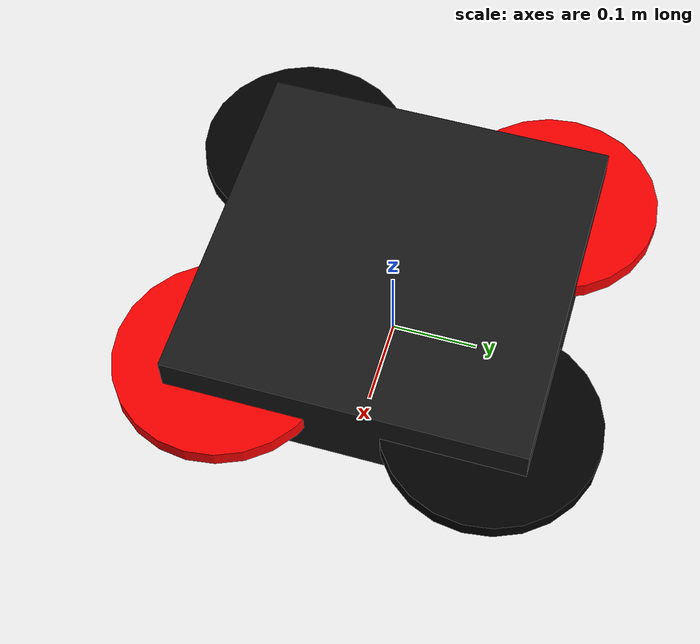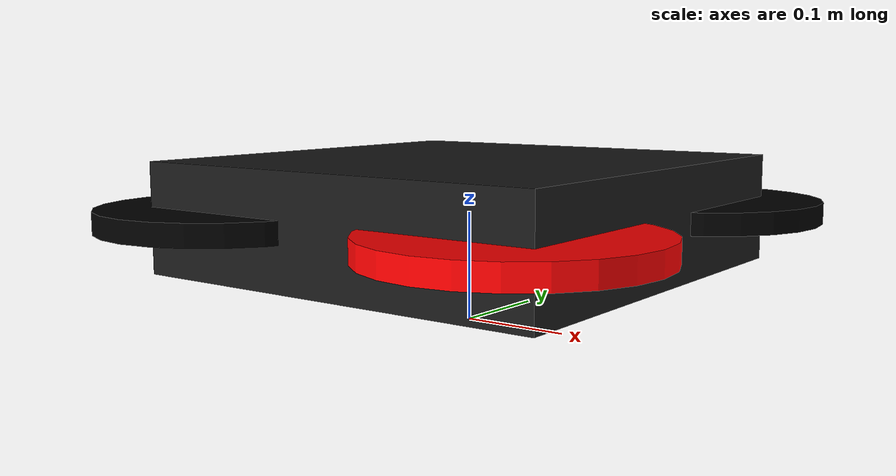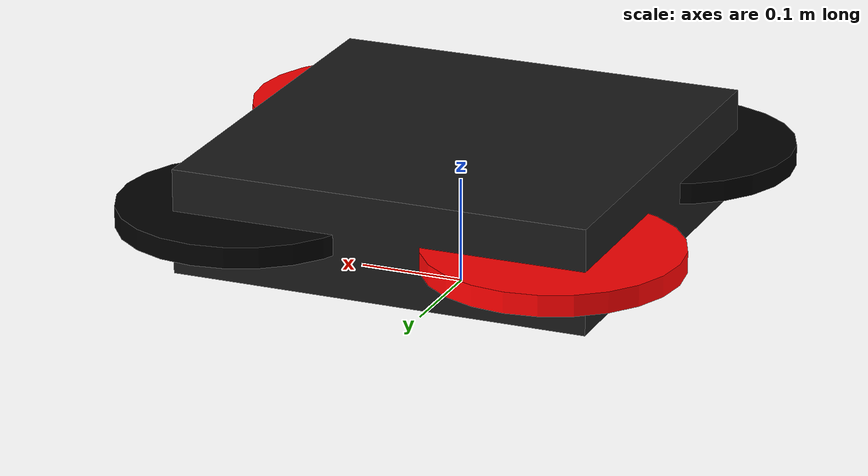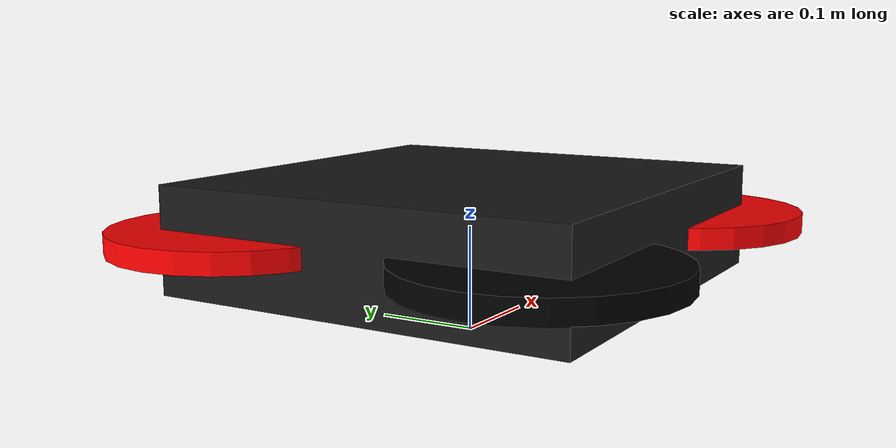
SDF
<?xml version="1.0" ?>
<sdf version="1.6">
    <model name="sporty_quadcopter">
        <static>false</static>

        <link name="base_link">
            <pose>0 0 0.1 0 0 0</pose>
            <inertial>
                <pose>0 0 0 0 0 0</pose>
                <mass>1.8</mass>
                <inertia>
                    <ixx>0.0243</ixx>
                    <ixy>0</ixy>
                    <ixz>0</ixz>
                    <iyy>0.0243</iyy>
                    <iyz>0</iyz>
                    <izz>0.0436</izz>
                </inertia>
            </inertial>

            <visual name="body_visual">
                <geometry>
                    <box>
                        <size>0.4 0.4 0.1</size>
                    </box>
                </geometry>
                <material>
                    <ambient>0.1 0.1 0.1 1.0</ambient>
                    <diffuse>0.1 0.1 0.1 1.0</diffuse>
                </material>
            </visual>

            <collision name="body_collision">
                <geometry>
                    <box>
                        <size>0.4 0.4 0.1</size>
                    </box>
                </geometry>
            </collision>

            <sensor name="imu_sensor" type="imu">
                <always_on>1</always_on>
                <update_rate>100</update_rate>
                <pose>0 0 0 0 0 0</pose>
                <topic>imu</topic>
            </sensor>

            <sensor name="gps" type="gps">
                <always_on>1</always_on>
                <update_rate>10</update_rate>
                <pose>0 0 0 0 0 0</pose>
                <topic>gps</topic>
            </sensor>
        </link>

        <link name="rotor_front_right">
            <pose>0.15 -0.15 0.1 0 0 0</pose>
            <inertial>
                <mass>0.025</mass>
                <inertia>
                    <ixx>9.75e-06</ixx>
                    <ixy>0</ixy>
                    <ixz>0</ixz>
                    <iyy>9.75e-06</iyy>
                    <iyz>0</iyz>
                    <izz>1.8e-05</izz>
                </inertia>
            </inertial>
            <visual name="rotor1_visual">
                <geometry>
                    <cylinder>
                        <radius>0.12</radius>
                        <length>0.02</length>
                    </cylinder>
                </geometry>
                <material>
                    <ambient>1 0 0 1</ambient>
                    <diffuse>1 0 0 1</diffuse>
                </material>
            </visual>
            <collision name="rotor1_collision">
                <geometry>
                    <cylinder>
                        <radius>0.12</radius>
                        <length>0.02</length>
                    </cylinder>
                </geometry>
            </collision>
        </link>

        <link name="rotor_front_left">
            <pose>0.15 0.15 0.1 0 0 0</pose>
            <inertial>
                <mass>0.025</mass>
                <inertia>
                    <ixx>9.75e-06</ixx>
                    <ixy>0</ixy>
                    <ixz>0</ixz>
                    <iyy>9.75e-06</iyy>
                    <iyz>0</iyz>
                    <izz>1.8e-05</izz>
                </inertia>
            </inertial>
            <visual name="rotor2_visual">
                <geometry>
                    <cylinder>
                        <radius>0.12</radius>
                        <length>0.02</length>
                    </cylinder>
                </geometry>
                <material>
                    <ambient>0 0 0 1</ambient>
                    <diffuse>0 0 0 1</diffuse>
                </material>
            </visual>
            <collision name="rotor2_collision">
                <geometry>
                    <cylinder>
                        <radius>0.12</radius>
                        <length>0.02</length>
                    </cylinder>
                </geometry>
            </collision>
        </link>

        <link name="rotor_back_right">
            <pose>-0.15 -0.15 0.1 0 0 0</pose>
            <inertial>
                <mass>0.025</mass>
                <inertia>
                    <ixx>9.75e-06</ixx>
                    <ixy>0</ixy>
                    <ixz>0</ixz>
                    <iyy>9.75e-06</iyy>
                    <iyz>0</iyz>
                    <izz>1.8e-05</izz>
                </inertia>
            </inertial>
            <visual name="rotor3_visual">
                <geometry>
                    <cylinder>
                        <radius>0.12</radius>
                        <length>0.02</length>
                    </cylinder>
                </geometry>
                <material>
                    <ambient>0 0 0 1</ambient>
                    <diffuse>0 0 0 1</diffuse>
                </material>
            </visual>
            <collision name="rotor3_collision">
                <geometry>
                    <cylinder>
                        <radius>0.12</radius>
                        <length>0.02</length>
                    </cylinder>
                </geometry>
            </collision>
        </link>

        <link name="rotor_back_left">
            <pose>-0.15 0.15 0.1 0 0 0</pose>
            <inertial>
                <mass>0.025</mass>
                <inertia>
                    <ixx>9.75e-06</ixx>
                    <ixy>0</ixy>
                    <ixz>0</ixz>
                    <iyy>9.75e-06</iyy>
                    <iyz>0</iyz>
                    <izz>1.8e-05</izz>
                </inertia>
            </inertial>
            <visual name="rotor4_visual">
                <geometry>
                    <cylinder>
                        <radius>0.12</radius>
                        <length>0.02</length>
                    </cylinder>
                </geometry>
                <material>
                    <ambient>1 0 0 1</ambient>
                    <diffuse>1 0 0 1</diffuse>
                </material>
            </visual>
            <collision name="rotor4_collision">
                <geometry>
                    <cylinder>
                        <radius>0.12</radius>
                        <length>0.02</length>
                    </cylinder>
                </geometry>
            </collision>
        </link>

        <joint name="rotor_front_right_joint" type="revolute">
            <parent>base_link</parent>
            <child>rotor_front_right</child>
            <axis>
                <xyz>0 0 1</xyz>
            </axis>
        </joint>

        <joint name="rotor_front_left_joint" type="revolute">
            <parent>base_link</parent>
            <child>rotor_front_left</child>
            <axis>
                <xyz>0 0 1</xyz>
            </axis>
        </joint>

        <joint name="rotor_back_right_joint" type="revolute">
            <parent>base_link</parent>
            <child>rotor_back_right</child>
            <axis>
                <xyz>0 0 1</xyz>
            </axis>
        </joint>

        <joint name="rotor_back_left_joint" type="revolute">
            <parent>base_link</parent>
            <child>rotor_back_left</child>
            <axis>
                <xyz>0 0 1</xyz>
            </axis>
        </joint>

        <plugin name="multirotor_base_plugin" filename="libgazebo_multirotor_base_plugin.so">
            <robotNamespace></robotNamespace>
            <motorSpeed>1100</motorSpeed>
            <torqueConstant>8.54858e-06</torqueConstant>
            <timeConstant>0.01</timeConstant>
            <maxRotVelocity>838</maxRotVelocity>
            <rotorVelocitySlowdownSim>10</rotorVelocitySlowdownSim>
        </plugin>
    </model>
</sdf>
